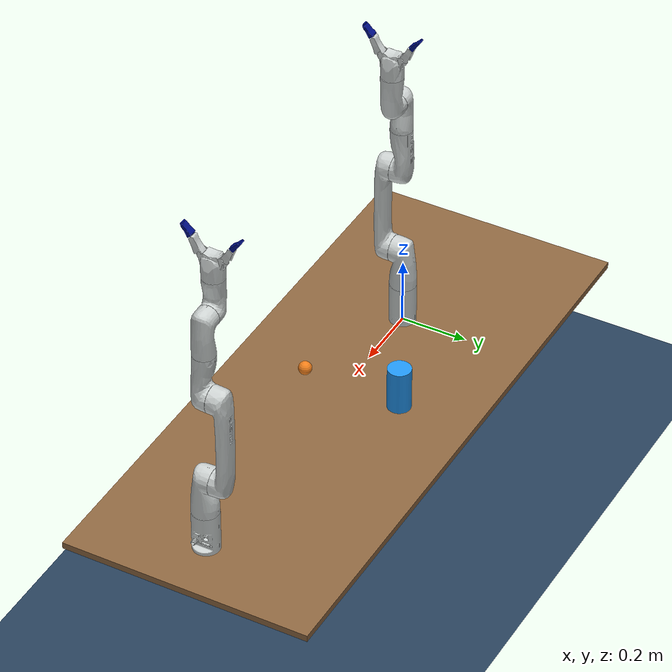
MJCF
<mujoco model="dual arm scene">
  <include file="dual_arm.xml"/>

  <compiler angle="radian"/>

  <asset>
    <texture type="skybox" builtin="gradient" rgb1="0.3 0.5 0.7" rgb2="0 0 0" width="512" height="512"/>
    <texture name="grid" type="2d" builtin="checker" rgb1="0.1 0.2 0.3" rgb2="0.2 0.3 0.4"
              width="512" height="512"/>
    <material name="grid" texture="grid" texrepeat="4 4" reflectance="0.1"/>
    <material name="table_mat" rgba="0.55 0.4 0.25 1"/>
    <material name="cup_mat" rgba="0.13 0.59 0.95 1"/>
    <material name="ball_mat" rgba="0.95 0.5 0.1 1"/>
  </asset>

  <worldbody>
    <light pos="0.55 0 2.5" dir="0 0 -1" diffuse="0.7 0.7 0.7" specular="0.2 0.2 0.2"/>
    <light pos="1.6 -1 2" dir="-0.3 0.3 -1" diffuse="0.4 0.4 0.4"/>
    <light pos="-0.5 -1 2" dir="0.3 0.3 -1" diffuse="0.4 0.4 0.4"/>

    <!-- Positioned well below the table (surface at z=-0.05) so the table reads as a
         distinct raised surface instead of being hidden inside/behind the floor plane. -->
    <geom name="floor" type="plane" pos="0 0 -0.5" size="3 3 0.05" material="grid"/>

    <body name="table" pos="0.325 0 -0.06">
      <geom name="table_top" type="box" size="0.9 0.375 0.01" material="table_mat"/>
    </body>

    <body name="cup" pos="0.30 0.15 0.025">
      <freejoint/>
      <geom name="cup_geom" type="cylinder" size="0.035 0.0675" material="cup_mat" mass="0.05"
            condim="4" friction="1.0 0.01 0.001"/>
    </body>

    <body name="ball" pos="0.30 -0.15 -0.025">
      <freejoint/>
      <geom name="ball_geom" type="sphere" size="0.02" material="ball_mat" mass="0.0027"/>
    </body>

    <camera name="overview" pos="2.4 -2.4 1.8" mode="targetbody" target="table"/>
  </worldbody>
</mujoco>

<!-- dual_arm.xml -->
<mujoco model="dual_arm">
  <compiler angle="radian"/>
  <option timestep="0.002" solver="Newton" jacobian="sparse"/>

  <asset>
    <mesh name="base_link" content_type="model/stl" file="/kortex_ws/install/kortex_description/share/kortex_description/arms/gen3_lite/6dof/meshes/base_link.STL"/>
    <mesh name="shoulder_link" content_type="model/stl" file="/kortex_ws/install/kortex_description/share/kortex_description/arms/gen3_lite/6dof/meshes/shoulder_link.STL"/>
    <mesh name="arm_link" content_type="model/stl" file="/kortex_ws/install/kortex_description/share/kortex_description/arms/gen3_lite/6dof/meshes/arm_link.STL"/>
    <mesh name="forearm_link" content_type="model/stl" file="/kortex_ws/install/kortex_description/share/kortex_description/arms/gen3_lite/6dof/meshes/forearm_link.STL"/>
    <mesh name="lower_wrist_link" content_type="model/stl" file="/kortex_ws/install/kortex_description/share/kortex_description/arms/gen3_lite/6dof/meshes/lower_wrist_link.STL"/>
    <mesh name="upper_wrist_link" content_type="model/stl" file="/kortex_ws/install/kortex_description/share/kortex_description/arms/gen3_lite/6dof/meshes/upper_wrist_link.STL"/>
    <mesh name="gripper_base_link" content_type="model/stl" file="/kortex_ws/install/kortex_description/share/kortex_description/grippers/gen3_lite_2f/meshes/gripper_base_link.STL"/>
    <mesh name="right_finger_prox_link" content_type="model/stl" file="/kortex_ws/install/kortex_description/share/kortex_description/grippers/gen3_lite_2f/meshes/right_finger_prox_link.STL"/>
    <mesh name="right_finger_dist_link" content_type="model/stl" file="/kortex_ws/install/kortex_description/share/kortex_description/grippers/gen3_lite_2f/meshes/right_finger_dist_link.STL"/>
    <mesh name="left_finger_prox_link" content_type="model/stl" file="/kortex_ws/install/kortex_description/share/kortex_description/grippers/gen3_lite_2f/meshes/left_finger_prox_link.STL"/>
    <mesh name="left_finger_dist_link" content_type="model/stl" file="/kortex_ws/install/kortex_description/share/kortex_description/grippers/gen3_lite_2f/meshes/left_finger_dist_link.STL"/>
  </asset>

  <worldbody>
    <body name="armA_base" pos="0 0 0" quat="1 0 0 0">
    <geom type="mesh" rgba="0.803 0.824 0.82 1" mesh="base_link"/>
    <body name="armA_shoulder_link" pos="0 0 0.12825">
      <inertial pos="2.477e-05 0.0221353 0.0993769" quat="0.972429 0.233194 -0.000430944 0.00108761" mass="0.959744" diaginertia="0.00165947 0.00158128 0.000717195"/>
      <joint name="armA_joint_1" pos="0 0 0" axis="0 0 1" range="-2.68 2.68" actuatorfrcrange="-10 10" damping="2.0"/>
      <geom type="mesh" rgba="0.803 0.824 0.82 1" mesh="shoulder_link"/>
      <body name="armA_arm_link" pos="0 -0.03 0.115" quat="0.707105 0.707108 0 0">
        <inertial pos="0.029983 0.211548 0.0453031" quat="0.534676 0.467794 -0.46336 0.529706" mass="1.17756" diaginertia="0.0115237 0.0114928 0.000839712"/>
        <joint name="armA_joint_2" pos="0 0 0" axis="0 0 1" range="-2.61 2.61" actuatorfrcrange="-14 14" damping="2.0"/>
        <geom type="mesh" rgba="0.803 0.824 0.82 1" mesh="arm_link"/>
        <body name="armA_forearm_link" pos="0 0.28 0" quat="-3.67321e-06 -1 0 0">
          <inertial pos="0.0301559 0.0950221 0.0073555" quat="0.523543 0.49139 -0.473675 0.50997" mass="0.597677" diaginertia="0.00169754 0.00163253 0.000291376"/>
          <joint name="armA_joint_3" pos="0 0 0" axis="0 0 1" range="-2.61 2.61" actuatorfrcrange="-10 10" damping="2.0"/>
          <geom type="mesh" rgba="0.803 0.824 0.82 1" mesh="forearm_link"/>
          <body name="armA_lower_wrist_link" pos="0 -0.14 0.02" quat="0.707105 0.707108 0 0">
            <inertial pos="0.00575149 0.0100044 0.0871921" quat="0.700403 -0.13124 -0.134345 0.688595" mass="0.526934" diaginertia="0.000785199 0.000756398 0.000275722"/>
            <joint name="armA_joint_4" pos="0 0 0" axis="0 0 1" range="-2.6 2.6" actuatorfrcrange="-7 7" damping="0.5"/>
            <geom type="mesh" rgba="0.803 0.824 0.82 1" mesh="lower_wrist_link"/>
            <body name="armA_upper_wrist_link" pos="0.0285 0 0.105" quat="0.707105 0 0.707108 0">
              <inertial pos="0.0805652 0.00980409 0.018728" quat="0.00431726 0.708285 -4.18922e-06 0.705913" mass="0.580973" diaginertia="0.00108466 0.00106374 0.000212638"/>
              <joint name="armA_joint_5" pos="0 0 0" axis="0 0 1" range="-2.53 2.53" actuatorfrcrange="-7 7" damping="0.5"/>
              <geom type="mesh" rgba="0.803 0.824 0.82 1" mesh="upper_wrist_link"/>
              <body name="armA_end_effector_link" pos="-0.105 0 0.0285" quat="0.707105 0 -0.707108 0">
                <joint name="armA_joint_6" pos="0 0 0" axis="0 0 1" range="-2.6 2.6" actuatorfrcrange="-7 7" damping="0.5"/>
                <geom type="mesh" rgba="0.803 0.824 0.82 1" mesh="gripper_base_link" condim="4" friction="1.0 0.01 0.001"/>
                <body name="armA_right_finger_prox_link" pos="0 -0.030501 0.070003" quat="0.627167 0.326463 0.6273 0.326463">
                  <inertial pos="0.020257 0.0063483 6.991e-05" quat="0.598941 0.598941 0.375858 0.375858" mass="0.018385" diaginertia="5.25068e-06 4.77e-06 1.59932e-06"/>
                  <joint name="armA_right_finger_bottom_joint" pos="0 0 0" axis="0 0 -1" range="0 0.85" solreflimit="0.008 1" solimplimit="0.97 0.99 0.0005 0.5 2" actuatorfrcrange="-20 20" damping="0.2"/>
                  <geom type="mesh" rgba="0.803 0.824 0.82 1" mesh="right_finger_prox_link" condim="4" friction="1.0 0.01 0.001"/>
                  <body name="armA_right_finger_dist_link" pos="-0.045636 0.020423 0">
                    <inertial pos="0.018488 0.0011091 0" quat="0.557345 0.557345 0.435162 0.435162" mass="0.010748" diaginertia="1.91e-06 1.61e-06 5.5e-07"/>
                    <joint name="armA_right_finger_tip_joint" pos="0 0 0" axis="0 0 1" range="-0.5 0.21" actuatorfrcrange="-2 2"/>
                    <geom type="mesh" rgba="0 0.055 0.525 1" mesh="right_finger_dist_link" condim="4" friction="1.0 0.01 0.001"/>
                  </body>
                </body>
                <body name="armA_left_finger_prox_link" pos="0 0.0305 0.070003" quat="0.627167 -0.326463 0.6273 -0.326463">
                  <inertial pos="0.020257 0.0063483 6.99e-05" quat="0.598941 0.598941 0.375858 0.375858" mass="0.018385" diaginertia="5.25068e-06 4.77e-06 1.59932e-06"/>
                  <joint name="armA_left_finger_bottom_joint" pos="0 0 0" axis="0 0 1" range="0 0.85" solreflimit="0.008 1" solimplimit="0.97 0.99 0.0005 0.5 2" actuatorfrcrange="-20 20" damping="0.2"/>
                  <geom type="mesh" rgba="0.803 0.824 0.82 1" mesh="left_finger_prox_link" condim="4" friction="1.0 0.01 0.001"/>
                  <body name="armA_left_finger_dist_link" pos="-0.045636 -0.020423 6.9901e-05">
                    <inertial pos="-0.018488 0.0011091 0" quat="0.557345 0.557345 0.435162 0.435162" mass="0.010748" diaginertia="1.91e-06 1.61e-06 5.5e-07"/>
                    <joint name="armA_left_finger_tip_joint" pos="0 0 0" axis="0 0 -1" range="-0.5 0.21" actuatorfrcrange="-2 2"/>
                    <geom type="mesh" rgba="0 0.055 0.525 1" mesh="left_finger_dist_link" condim="4" friction="1.0 0.01 0.001"/>
                  </body>
                </body>
              </body>
            </body>
          </body>
        </body>
      </body>
    </body>
    </body>
    <body name="armB_base" pos="1.1 0 0" quat="0 0 0 1">
    <geom type="mesh" rgba="0.803 0.824 0.82 1" mesh="base_link"/>
    <body name="armB_shoulder_link" pos="0 0 0.12825">
      <inertial pos="2.477e-05 0.0221353 0.0993769" quat="0.972429 0.233194 -0.000430944 0.00108761" mass="0.959744" diaginertia="0.00165947 0.00158128 0.000717195"/>
      <joint name="armB_joint_1" pos="0 0 0" axis="0 0 1" range="-2.68 2.68" actuatorfrcrange="-10 10" damping="2.0"/>
      <geom type="mesh" rgba="0.803 0.824 0.82 1" mesh="shoulder_link"/>
      <body name="armB_arm_link" pos="0 -0.03 0.115" quat="0.707105 0.707108 0 0">
        <inertial pos="0.029983 0.211548 0.0453031" quat="0.534676 0.467794 -0.46336 0.529706" mass="1.17756" diaginertia="0.0115237 0.0114928 0.000839712"/>
        <joint name="armB_joint_2" pos="0 0 0" axis="0 0 1" range="-2.61 2.61" actuatorfrcrange="-14 14" damping="2.0"/>
        <geom type="mesh" rgba="0.803 0.824 0.82 1" mesh="arm_link"/>
        <body name="armB_forearm_link" pos="0 0.28 0" quat="-3.67321e-06 -1 0 0">
          <inertial pos="0.0301559 0.0950221 0.0073555" quat="0.523543 0.49139 -0.473675 0.50997" mass="0.597677" diaginertia="0.00169754 0.00163253 0.000291376"/>
          <joint name="armB_joint_3" pos="0 0 0" axis="0 0 1" range="-2.61 2.61" actuatorfrcrange="-10 10" damping="2.0"/>
          <geom type="mesh" rgba="0.803 0.824 0.82 1" mesh="forearm_link"/>
          <body name="armB_lower_wrist_link" pos="0 -0.14 0.02" quat="0.707105 0.707108 0 0">
            <inertial pos="0.00575149 0.0100044 0.0871921" quat="0.700403 -0.13124 -0.134345 0.688595" mass="0.526934" diaginertia="0.000785199 0.000756398 0.000275722"/>
            <joint name="armB_joint_4" pos="0 0 0" axis="0 0 1" range="-2.6 2.6" actuatorfrcrange="-7 7" damping="0.5"/>
            <geom type="mesh" rgba="0.803 0.824 0.82 1" mesh="lower_wrist_link"/>
            <body name="armB_upper_wrist_link" pos="0.0285 0 0.105" quat="0.707105 0 0.707108 0">
              <inertial pos="0.0805652 0.00980409 0.018728" quat="0.00431726 0.708285 -4.18922e-06 0.705913" mass="0.580973" diaginertia="0.00108466 0.00106374 0.000212638"/>
              <joint name="armB_joint_5" pos="0 0 0" axis="0 0 1" range="-2.53 2.53" actuatorfrcrange="-7 7" damping="0.5"/>
              <geom type="mesh" rgba="0.803 0.824 0.82 1" mesh="upper_wrist_link"/>
              <body name="armB_end_effector_link" pos="-0.105 0 0.0285" quat="0.707105 0 -0.707108 0">
                <joint name="armB_joint_6" pos="0 0 0" axis="0 0 1" range="-2.6 2.6" actuatorfrcrange="-7 7" damping="0.5"/>
                <geom type="mesh" rgba="0.803 0.824 0.82 1" mesh="gripper_base_link" condim="4" friction="1.0 0.01 0.001"/>
                <body name="armB_right_finger_prox_link" pos="0 -0.030501 0.070003" quat="0.627167 0.326463 0.6273 0.326463">
                  <inertial pos="0.020257 0.0063483 6.991e-05" quat="0.598941 0.598941 0.375858 0.375858" mass="0.018385" diaginertia="5.25068e-06 4.77e-06 1.59932e-06"/>
                  <joint name="armB_right_finger_bottom_joint" pos="0 0 0" axis="0 0 -1" range="0 0.85" solreflimit="0.008 1" solimplimit="0.97 0.99 0.0005 0.5 2" actuatorfrcrange="-20 20" damping="0.2"/>
                  <geom type="mesh" rgba="0.803 0.824 0.82 1" mesh="right_finger_prox_link" condim="4" friction="1.0 0.01 0.001"/>
                  <body name="armB_right_finger_dist_link" pos="-0.045636 0.020423 0">
                    <inertial pos="0.018488 0.0011091 0" quat="0.557345 0.557345 0.435162 0.435162" mass="0.010748" diaginertia="1.91e-06 1.61e-06 5.5e-07"/>
                    <joint name="armB_right_finger_tip_joint" pos="0 0 0" axis="0 0 1" range="-0.5 0.21" actuatorfrcrange="-2 2"/>
                    <geom type="mesh" rgba="0 0.055 0.525 1" mesh="right_finger_dist_link" condim="4" friction="1.0 0.01 0.001"/>
                  </body>
                </body>
                <body name="armB_left_finger_prox_link" pos="0 0.0305 0.070003" quat="0.627167 -0.326463 0.6273 -0.326463">
                  <inertial pos="0.020257 0.0063483 6.99e-05" quat="0.598941 0.598941 0.375858 0.375858" mass="0.018385" diaginertia="5.25068e-06 4.77e-06 1.59932e-06"/>
                  <joint name="armB_left_finger_bottom_joint" pos="0 0 0" axis="0 0 1" range="0 0.85" solreflimit="0.008 1" solimplimit="0.97 0.99 0.0005 0.5 2" actuatorfrcrange="-20 20" damping="0.2"/>
                  <geom type="mesh" rgba="0.803 0.824 0.82 1" mesh="left_finger_prox_link" condim="4" friction="1.0 0.01 0.001"/>
                  <body name="armB_left_finger_dist_link" pos="-0.045636 -0.020423 6.9901e-05">
                    <inertial pos="-0.018488 0.0011091 0" quat="0.557345 0.557345 0.435162 0.435162" mass="0.010748" diaginertia="1.91e-06 1.61e-06 5.5e-07"/>
                    <joint name="armB_left_finger_tip_joint" pos="0 0 0" axis="0 0 -1" range="-0.5 0.21" actuatorfrcrange="-2 2"/>
                    <geom type="mesh" rgba="0 0.055 0.525 1" mesh="left_finger_dist_link" condim="4" friction="1.0 0.01 0.001"/>
                  </body>
                </body>
              </body>
            </body>
          </body>
        </body>
      </body>
    </body>
    </body>
  </worldbody>

  <equality>
    <joint joint1="armA_left_finger_bottom_joint" joint2="armA_right_finger_bottom_joint" polycoef="0.0 1.0 0 0 0"/>
    <joint joint1="armA_right_finger_tip_joint" joint2="armA_right_finger_bottom_joint" polycoef="-0.1 -0.276 0 0 0"/>
    <joint joint1="armA_left_finger_tip_joint" joint2="armA_right_finger_bottom_joint" polycoef="-0.1 -0.276 0 0 0"/>
    <joint joint1="armB_left_finger_bottom_joint" joint2="armB_right_finger_bottom_joint" polycoef="0.0 1.0 0 0 0"/>
    <joint joint1="armB_right_finger_tip_joint" joint2="armB_right_finger_bottom_joint" polycoef="-0.1 -0.276 0 0 0"/>
    <joint joint1="armB_left_finger_tip_joint" joint2="armB_right_finger_bottom_joint" polycoef="-0.1 -0.276 0 0 0"/>
  </equality>
</mujoco>
